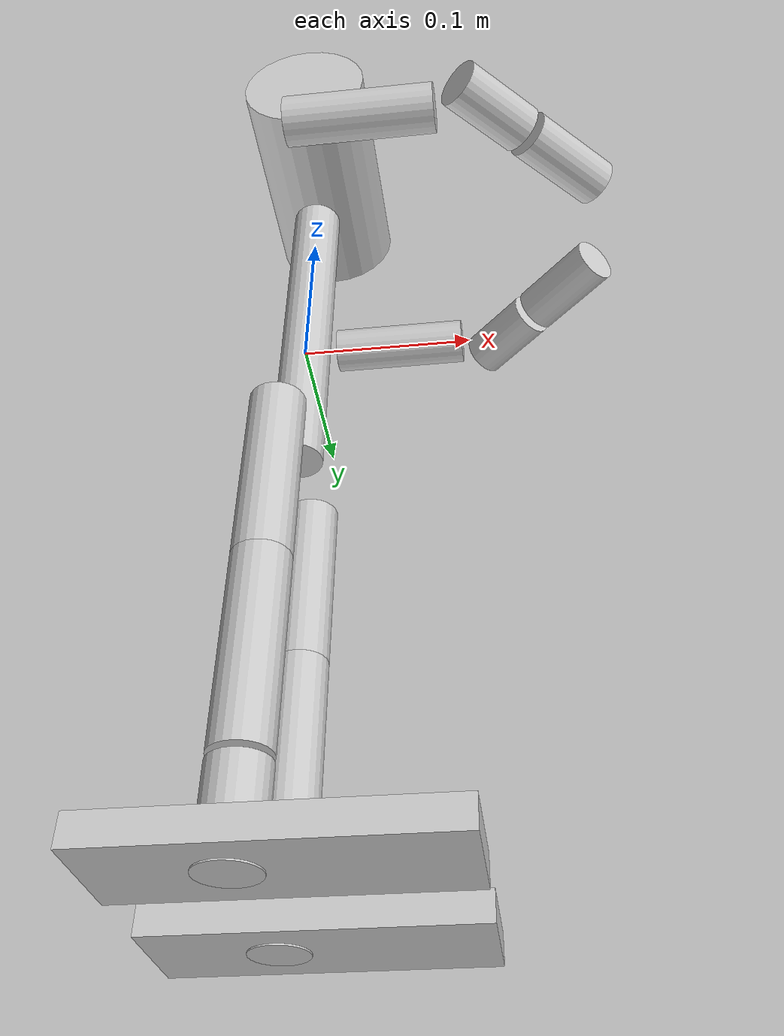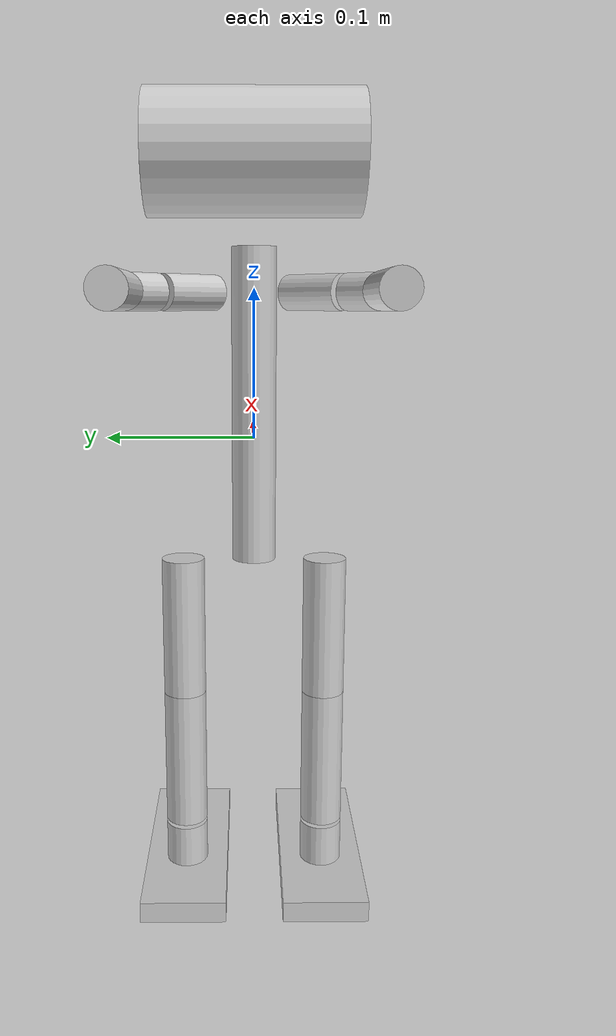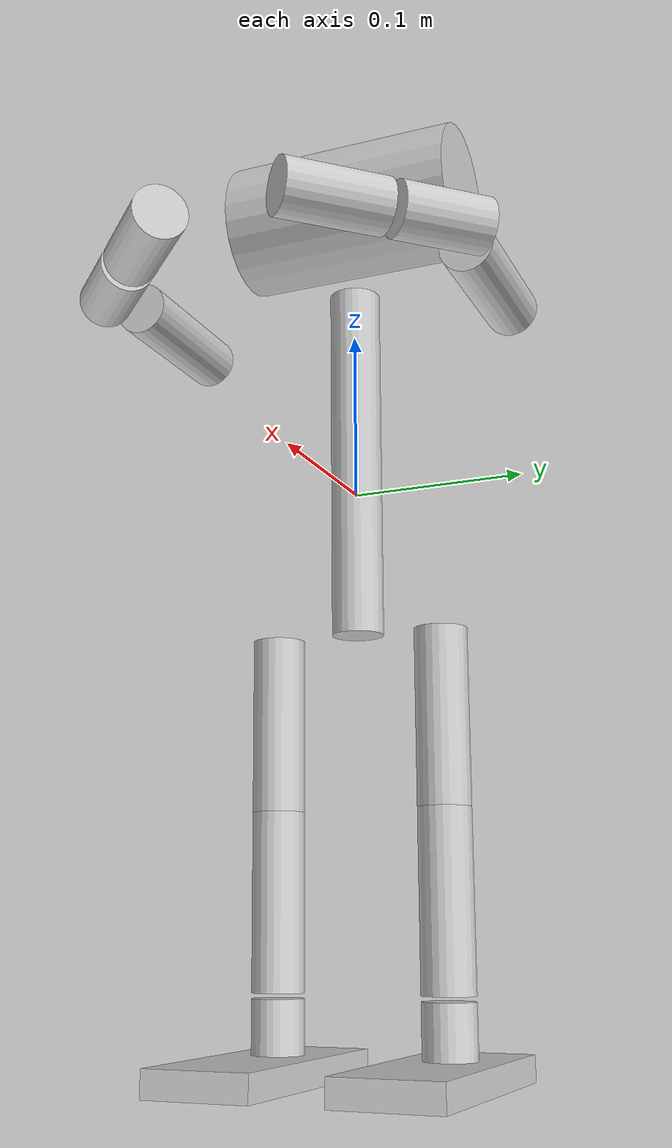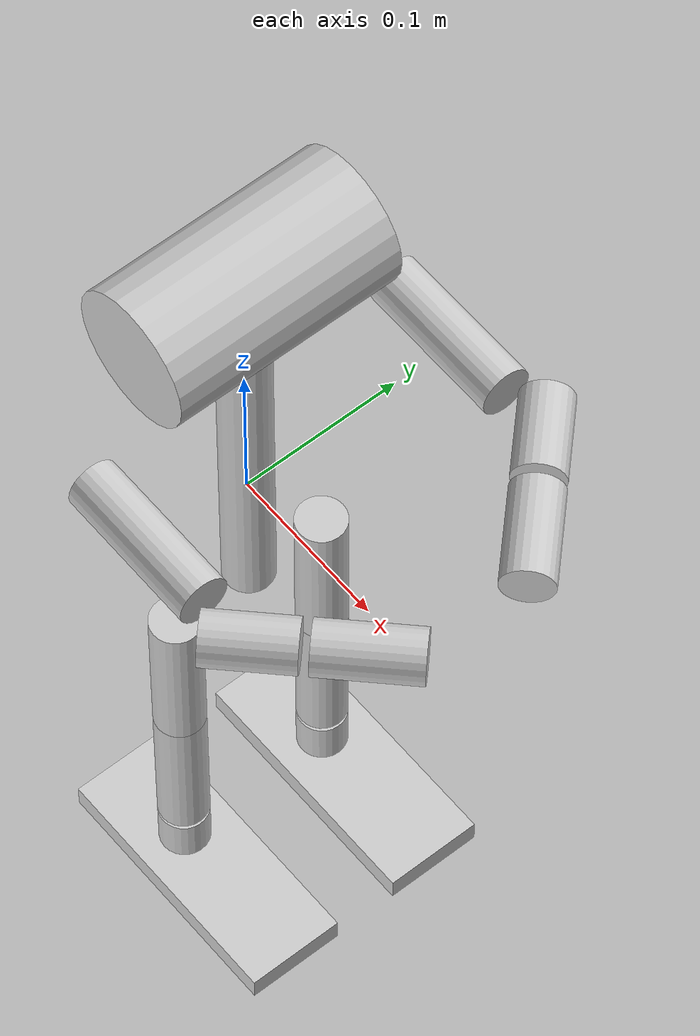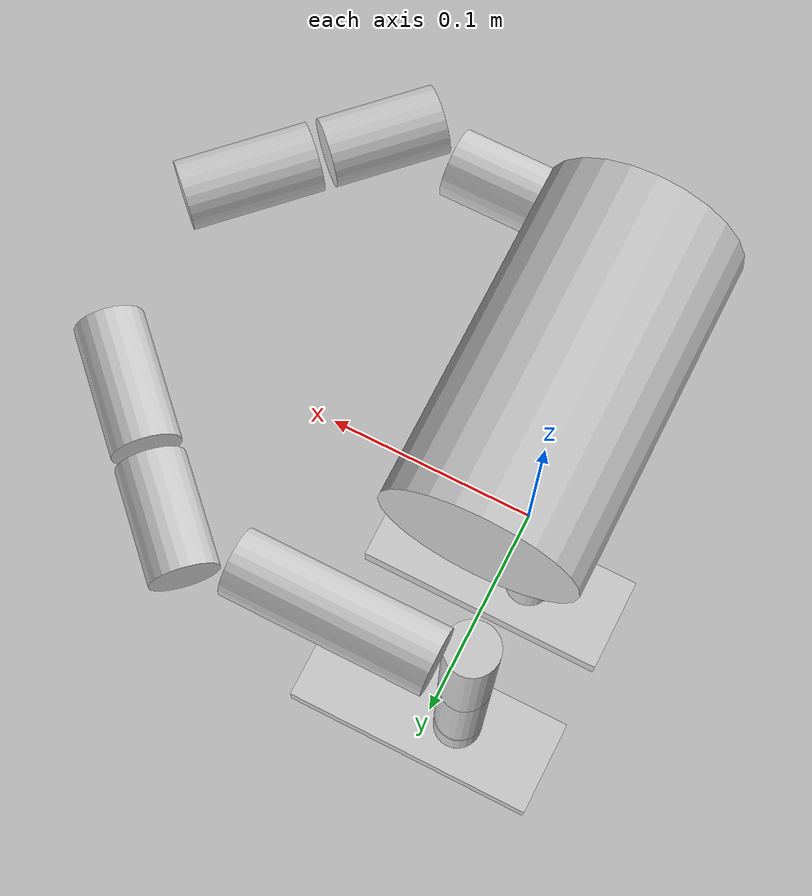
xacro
<?xml version="1.0"?>
<robot xmlns:xacro="http://ros.org/wiki/xacro" name="nao">

  <include filename="$(find nao_description)/urdf/visuals.xacro" />
  <include filename="$(find nao_description)/urdf/nao_robot_v4_structure.urdf.xacro" />
</robot>

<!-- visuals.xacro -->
<!--
    A simple visualization of the Nao's kinematic structure as cylinders
-->
<robot xmlns:xacro="http://ros.org/wiki/xacro">
  <material name="LightGrey">
    <color rgba="0.8 0.8 0.8 1.0"/>
  </material>
  <material name="Grey">
      <color rgba="0.6 0.6 0.6 1.0"/>
  </material>
  <material name="DarkGrey">
      <color rgba="0.3 0.3 0.3 1.0"/>
  </material>
  <material name="Black">
      <color rgba="0.1 0.1 0.1 1.0"/>
  </material>

    <xacro:property name="pi" value="3.1415926535897931"/>
    <xacro:property name="pi_2" value="1.5707963267948966"/>

    <xacro:macro name="insert_visualization_torso" params="">
        <visual>
            <!-- one cylinder spanning over HipOffsetZ and NeckOffsetZ -->
            <origin xyz="0 0 0.02075" rpy="0 0 0"/>
            <geometry>
                <cylinder radius="0.015" length="0.2115"/>
            </geometry>
            <material name="LightGrey"/>
        </visual>
    </xacro:macro>

    <xacro:macro name="insert_visualization_headYaw" params="">
    </xacro:macro>

    <xacro:macro name="insert_visualization_head" params="">
        <visual>
            <origin xyz="0 0 0.058" rpy="1.57 0 0"/>
            <geometry>
                <cylinder radius="0.04" length="0.14"/>
            </geometry>
            <material name="LightGrey"/>
        </visual>
    </xacro:macro>

    <xacro:macro name="insert_visualization_arm" params="side">
        <visual>
            <origin xyz="0.045 0 0" rpy="${pi_2} 0 ${pi_2}"/>
            <geometry>
                <cylinder radius="0.015" length="0.09"/>
            </geometry>
            <material name="LightGrey"/>
        </visual>
    </xacro:macro>

    <xacro:macro name="insert_visualization_elbow" params="side">
        <visual>
            <origin xyz="0.025325 0 0" rpy="${pi_2} 0 ${pi_2}"/>
            <geometry>
                <cylinder radius="0.015" length="0.05065"/>
            </geometry>
            <material name="LightGrey"/>
        </visual>
    </xacro:macro>

    <xacro:macro name="insert_visualization_wrist" params="side">
        <visual>
            <origin xyz="0.029 0 0" rpy="${pi_2} 0 ${pi_2}"/>
            <geometry>
                <cylinder radius="0.015" length="0.058"/>
            </geometry>
            <material name="LightGrey"/>
        </visual>
    </xacro:macro>

    <xacro:macro name="insert_visualization_hip" params="side">
    </xacro:macro>

    <xacro:macro name="insert_visualization_hipRoll" params="side">
    </xacro:macro>

    <xacro:macro name="insert_visualization_thigh" params="side">
        <visual>
            <origin xyz="0 0 -0.05" rpy="0 0 0"/>
            <geometry>
                <cylinder radius="0.015" length="0.1"/>
            </geometry>
            <material name="LightGrey"/>
        </visual>
    </xacro:macro>

    <xacro:macro name="insert_visualization_shine" params="side">
        <visual>
            <origin xyz="0 0 -0.05" rpy="0 0 0"/>
            <geometry>
                <cylinder radius="0.015" length="0.1"/>
            </geometry>
            <material name="LightGrey"/>
        </visual>
    </xacro:macro>

    <xacro:macro name="insert_visualization_ankle" params="side">
    </xacro:macro>

    <xacro:macro name="insert_visualization_ankleRoll" params="side">
        <visual>
            <origin xyz="0 0 -0.023" rpy="0 0 0"/>
            <geometry>
                <cylinder radius="0.015" length="0.046"/>
            </geometry>
            <material name="LightGrey"/>
        </visual>
    </xacro:macro>

    <xacro:macro name="insert_visualization_foot" params="side">
        <visual>
            <origin xyz="0.02 0 0.0075" rpy="0 0 0"/>
            <geometry>
                <box size="0.16 0.06 0.015"/>
            </geometry>
            <material name="LightGrey"/>
        </visual>
    </xacro:macro>

    <xacro:macro name="insert_visualization_cameraTop" params="">
    </xacro:macro>

    <xacro:macro name="insert_visualization_cameraBottom" params="">
    </xacro:macro>

    <xacro:macro name="insert_visualization_fingers" params="side">
    </xacro:macro>

    <xacro:macro name="insert_visualization_elbow_yaw" params="side">
    </xacro:macro>
</robot>

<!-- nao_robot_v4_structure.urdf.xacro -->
<robot xmlns:xacro="http://ros.org/wiki/xacro">

  <!-- dummy first link, directly connects with torso -->
  <link name="base_link" />

  <!-- first real link of the robot, inertial reference frame -->
  <link name="torso" >
    <inertial>
      <origin xyz="-0.00413 0.00009 0.04342" rpy="0 0 0"/>
      <mass value="1.04956"/>
      <inertia ixx="0.00487953284"  ixy="-0.00001428591"  ixz="-0.00019545651" iyy="0.00470360698" iyz="0.00002224589" izz="0.0015671352" />
    </inertial>
    <xacro:insert_visualization_torso/>
  </link>

  <link name="HeadYaw_link">
    <inertial>
      <origin xyz="-0.00001 0.00014 -0.02742" rpy="0 0 0"/>
      <mass value="0.06442"/>
      <inertia ixx="0.00006223368"  ixy="0.00000000042"  ixz="0.00000007448" iyy="0.00006324431" iyz="0.00000010416" izz="0.00000549462" />
    </inertial>
    <xacro:insert_visualization_headYaw/>
  </link>

  <link name="HeadPitch_link">
    <inertial>
      <origin xyz="-0.00112 -0.00003 0.05258" rpy="0 0 0"/>
      <mass value="0.60533"/>
      <inertia ixx="0.00208895741"  ixy="0.00000549094"  ixz="0.0001133995" iyy="1932222.63e-9" iyz="-0.00002803917" izz="0.00082257793" />
    </inertial>
    <xacro:insert_visualization_head/>
  </link>

  <link name="gaze" />

  <link name="CameraTop_frame">
    <xacro:insert_visualization_cameraTop/>
  </link>

  <link name="CameraBottom_frame">
    <xacro:insert_visualization_cameraBottom/>
  </link>

  <!-- Arm -->
  <xacro:macro name="arm_links" params="side reflect">
  <link name = "${side}ShoulderPitch_link">
    <inertial>
      <origin xyz="-0.00165 ${reflect*-0.02663} 0.00014" rpy="0 0 0"/>
      <mass value="0.07504"/>
      <inertia ixx="0"  ixy="0"  ixz="0" iyy="0" iyz="0" izz="0" />
    </inertial>
  </link>

  <link name = "${side}ElbowYaw_link">
    <inertial>
      <origin xyz="-0.02744 0.00000 -0.00014" rpy="0 0 0"/>
      <mass value="0.06483"/>
      <inertia ixx="0"  ixy="0"  ixz="0" iyy="0" iyz="0" izz="0" />
    </inertial>
  </link>

  <link name = "${side}ElbowRoll_link">
    <inertial>
      <origin xyz="0.02552 ${reflect*-0.00281} 0.00090" rpy="0 0 0"/>
      <mass value="0.07778"/>
      <inertia ixx="0"  ixy="0"  ixz="0" iyy="0" iyz="0" izz="0" />
    </inertial>

    <xacro:insert_visualization_elbow side="${side}"/>
  </link>

  <link name = "${side}WristYaw_link">
    <inertial>
      <origin xyz="0.03434 ${reflect*-0.00088} -0.00308" rpy="0 0 0"/>
      <mass value="0.18533"/>
      <inertia ixx="0"  ixy="0"  ixz="0" iyy="0" iyz="0" izz="0" />
    </inertial>
    <xacro:insert_visualization_wrist side="${side}"/>
  </link>
  </xacro:macro>

  <link name="l_wrist"/>
  <link name="r_wrist"/>

  <link name="l_gripper">
    <xacro:insert_visualization_fingers side="L"/>
  </link>
  <link name="r_gripper">
    <xacro:insert_visualization_fingers side="R"/>
  </link>
  <xacro:arm_links side="L" reflect="-1"/>
  <xacro:arm_links side="R" reflect="1"/>

  <link name = "RShoulderRoll_link" >
    <inertial>
      <origin xyz="0.02429 -0.00952 0.00320" rpy="0 0 0"/>
      <mass value="0.15794"/>
      <inertia ixx="0"  ixy="0"  ixz="0" iyy="0" iyz="0" izz="0" />
    </inertial>
    <xacro:insert_visualization_arm side="R"/>
  </link>

  <link name = "LShoulderRoll_link" >
    <inertial>
      <origin xyz="0.02455 0.00563 0.00330" rpy="0 0 0"/>
      <mass value="0.15777"/>
      <inertia ixx="0"  ixy="0"  ixz="0" iyy="0" iyz="0" izz="0" />
    </inertial>
    <xacro:insert_visualization_arm side="L"/>
  </link>

  <!-- Leg links -->
  <xacro:macro name="leg_links" params="side reflect">
  <link name="${side}HipYawPitch_link" >
    <inertial>
      <origin xyz="-0.00773 ${reflect*0.0115} 0.0269" rpy="0 0 0"/>
      <mass value="0.07050"/>
      <inertia ixx="0"  ixy="0"  ixz="0" iyy="0" iyz="0" izz="0" />
    </inertial>
    <xacro:insert_visualization_hip side="${side}"/>
	</link>

  <link name="${side}HipRoll_link">
    <inertial>
      <origin xyz="-0.01549 ${reflect*-0.00029} -0.00516" rpy="0 0 0"/>
      <mass value="0.13053"/>
      <inertia ixx="0"  ixy="0"  ixz="0" iyy="0" iyz="0" izz="0" />
    </inertial>
    <xacro:insert_visualization_hipRoll side="${side}"/>
  </link>

  <link name="${side}HipPitch_link">
    <inertial>
      <origin xyz="0.00139 ${reflect*-0.00223} -0.05373" rpy="0 0 0"/>
      <mass value="0.38972"/>
      <inertia ixx="0"  ixy="0"  ixz="0" iyy="0" iyz="0" izz="0" />
    </inertial>
    <xacro:insert_visualization_thigh side="${side}"/>
  </link>

  <link name="${side}KneePitch_link">
    <inertial>
      <origin xyz="0.00423 ${reflect*-0.00223} -0.04937" rpy="0 0 0"/>
      <mass value="0.29152"/>
      <inertia ixx="0"  ixy="0"  ixz="0" iyy="0" iyz="0" izz="0" />
    </inertial>
    <xacro:insert_visualization_shine side="${side}"/>
  </link>

  <link name="${side}AnklePitch_link">
    <inertial>
      <origin xyz="0.00045 ${reflect*-0.00029} 0.00684" rpy="0 0 0"/>
      <mass value="0.13415"/>
      <inertia ixx="0"  ixy="0"  ixz="0" iyy="0" iyz="0" izz="0" />
    </inertial>
    <xacro:insert_visualization_ankle side="${side}"/>
  </link>

  <link name="${side}AnkleRoll_link">
   <inertial>
      <origin xyz="0.02541 ${reflect*-0.00331} -0.03239" rpy="0 0 0"/>
      <mass value="0.16178"/>
      <inertia ixx="0"  ixy="0"  ixz="0" iyy="0" iyz="0" izz="0" />
    </inertial>
    <xacro:insert_visualization_ankleRoll side="${side}"/>
  </link>
  </xacro:macro>

  <link name="l_ankle" />
  <link name="r_ankle" />

  <link name="l_sole">
    <xacro:insert_visualization_foot side="L"/>
  </link>
  <link name="r_sole">
    <xacro:insert_visualization_foot side="R"/>
  </link>

  <xacro:leg_links side="L" reflect="-1"/>
  <xacro:leg_links side="R" reflect="1"/>

<!--   Joints following below -->

  <joint name="base_joint" type="fixed">
    <child link="torso"/>
    <parent link="base_link"/>
    <origin xyz="0 0 0" rpy="0 0 0" />
  </joint>

  <!-- Head joints -->

  <joint name="HeadYaw" type="revolute">
    <parent link="torso"/>
    <child link="HeadYaw_link"/>
	<!-- NeckOffsetZ -->
    <origin xyz="0 0 0.1265" rpy="0 0 0" />
    <axis xyz="0 0 1" />
    <limit velocity="3.0" effort="30" lower="-2.0857" upper="2.0857" />
  </joint>

  <joint name="HeadPitch" type="revolute">
    <parent link="HeadYaw_link"/>
    <child link="HeadPitch_link"/>
    <origin xyz="0 0 0" rpy="0 0 0" />
    <axis xyz="0 1 0" />
    <limit velocity="3.0" effort="30" lower="-0.6720" upper="0.5149" />
  </joint>

  <joint name="gaze_joint" type="fixed">
    <parent link="HeadPitch_link"/>
    <child link="gaze"/>
    <origin xyz="0.0539 0 0.05" />
  </joint>

  <joint name="CameraTop" type="fixed">
    <parent link="HeadPitch_link"/>
    <child link="CameraTop_frame"/>
    <!-- rotated by 1.2 degress -->
    <origin xyz="0.05871 0 0.06364" rpy="-1.59174 0 -${pi_2}" />
  </joint>

  <joint name="CameraBottom" type="fixed">
    <parent link="HeadPitch_link"/>
    <child link="CameraBottom_frame"/>
    <!-- rotated by 39.7 degrees -->
    <origin xyz="0.05071 0 0.01774" rpy="-2.263692 0 -${pi_2}" />
  </joint>

  <!-- Arm joints -->
  <xacro:macro name="arm_joints" params="side reflect">
  <joint name="${side}ShoulderPitch" type="revolute">
    <parent link="torso"/>
    <child link="${side}ShoulderPitch_link"/>
    <origin xyz="0 ${reflect*-0.098} 0.1" rpy="0 0 0"/>
    <axis xyz="0 1 0"/>
    <limit velocity="3.0" effort="30" lower="-2.0857" upper="2.0857"/>
  </joint>

  <joint name="${side}ElbowYaw" type="revolute">
    <parent link="${side}ShoulderRoll_link"/>
    <child link="${side}ElbowYaw_link"/>
    <origin xyz="0.105 ${reflect*-0.015} 0" rpy="0 0 0"/>
    <axis xyz="1 0 0"/>
    <limit velocity="3.0" effort="30" lower="-2.0857" upper="2.0857"/>
  </joint>

  <joint name="${side}WristYaw" type="revolute">
    <parent link="${side}ElbowRoll_link"/>
    <child link="${side}WristYaw_link"/>
    <origin xyz="0.05595 0 0" rpy="0 0 0"/>
    <axis xyz="1 0 0"/>
    <limit velocity="3.0" effort="30" lower="-1.8238" upper="1.8238"/>
  </joint>
  </xacro:macro>

  <joint name="l_wrist_joint" type="fixed">
    <parent link="LWristYaw_link" />
    <child link="l_wrist" />
    <origin xyz="0 0 0" />
  </joint>
  <joint name="r_wrist_joint" type="fixed">
    <parent link="RWristYaw_link" />
    <child link="r_wrist" />
    <origin xyz="0 0 0" />
  </joint>

  <joint name="l_gripper_joint" type="fixed">
    <parent link="l_wrist" />
    <child link="l_gripper" />
    <origin xyz="0.058 0 -0.0159" />
  </joint>
  <joint name="r_gripper_joint" type="fixed">
    <parent link="r_wrist" />
    <child link="r_gripper" />
    <origin xyz="0.058 0 -0.0159" />
  </joint>

  <joint name="LElbowRoll" type="revolute">
    <parent link="LElbowYaw_link"/>
    <child link="LElbowRoll_link"/>
    <origin xyz="0 0 0" rpy="0 0 0"/>
    <axis xyz="0 0 1"/>
    <limit velocity="3.0" effort="30" lower="-1.5446" upper="-0.0349"/>
  </joint>
  <joint name="RElbowRoll" type="revolute">
    <parent link="RElbowYaw_link"/>
    <child link="RElbowRoll_link"/>
    <origin xyz="0 0 0" rpy="0 0 0"/>
    <axis xyz="0 0 1"/>
    <limit velocity="3.0" effort="30" lower="0.0349" upper="1.5446"/>
  </joint>

  <joint name="LShoulderRoll" type="revolute">
    <parent link="LShoulderPitch_link"/>
    <child link="LShoulderRoll_link"/>
    <origin xyz="0 0 0" rpy="0 0 0"/>
    <axis xyz="0 0 1"/>
    <limit velocity="3.0" effort="30" lower="-0.3142" upper="1.3265"/>
  </joint>
  <joint name="RShoulderRoll" type="revolute">
    <parent link="RShoulderPitch_link"/>
    <child link="RShoulderRoll_link"/>
    <origin xyz="0 0 0" rpy="0 0 0"/>
    <axis xyz="0 0 1"/>
    <limit velocity="3.0" effort="30" lower="-1.3265" upper="0.3142"/>
  </joint>

  <xacro:arm_joints side="L" reflect="-1"/>
  <xacro:arm_joints side="R" reflect="1"/>

  <!-- Leg joints -->
  <joint name="LHipYawPitch" type="revolute">
    <parent link="torso"/>
    <child link="LHipYawPitch_link"/>
    <origin xyz="0 0.05 -0.085" rpy="0 0 0"/>
    <axis xyz="0 0.707106 -0.707106"/>
    <limit velocity="3.0" effort="30" lower="-1.145303" upper="0.740810"/>
  </joint>
  <joint name="RHipYawPitch" type="revolute">
    <parent link="torso"/>
    <child link="RHipYawPitch_link"/>
    <origin xyz="0 -0.05 -0.085" rpy="0 0 0"/>
    <axis xyz="0 0.707106 0.707106"/>
    <limit velocity="3.0" effort="30" lower="-1.145303" upper="0.740810"/>
    <mimic joint="LHipYawPitch" multiplier="1" offset="0"/>
  </joint>

  <xacro:macro name="leg_joints" params="side reflect">
  <joint name="${side}HipPitch" type="revolute">
    <parent link="${side}HipRoll_link"/>
    <child link="${side}HipPitch_link"/>
    <origin xyz="0 0 0" rpy="0 0 0"/>
    <axis xyz="0 1 0"/>
    <!--Nao V3 and V4-->
    <!-- LHipPitch limits: -1.773912 .. 0.484090 -->
    <!-- RHipPitch limits: -1.772308 .. 0.485624 -->
    <limit velocity="3.0" effort="30" lower="-1.772308" upper="0.484090"/>
  </joint>

  <joint name="${side}KneePitch" type="revolute">
    <parent link="${side}HipPitch_link"/>
    <child link="${side}KneePitch_link"/>
    <origin xyz="0 0 -0.1" rpy="0 0 0"/>
    <axis xyz="0 1 0"/>
    <!-- LKneePitch limits: -0.092346 .. 2.112528 -->
    <!-- RKneePitch limits: -0.103083 .. 2.120198 -->
    <limit velocity="3.0" effort="30" lower="-0.092346" upper="2.112528"/>
  </joint>

  <joint name="${side}AnklePitch" type="revolute">
    <parent link="${side}KneePitch_link"/>
    <child link="${side}AnklePitch_link"/>
    <origin xyz="0 0 -0.10290" rpy="0 0 0"/>
    <axis xyz="0 1 0"/>
    <!-- LAnklePitch limits: -1.189516 .. 0.922747 -->
    <!-- RAnklePitch limits: -1.186448 .. 0.932056 -->
    <limit velocity="3.0" effort="30" lower="-1.186448" upper="0.922747"/>
  </joint>
  </xacro:macro>

  <joint name="LHipRoll" type="revolute">
    <parent link="LHipYawPitch_link"/>
    <child link="LHipRoll_link"/>
    <origin xyz="0 0 0" rpy="0 0 0"/>
    <axis xyz="1 0 0"/>
    <limit velocity="3.0" effort="30" lower="-0.379472" upper="0.790477"/>
  </joint>
  <joint name="RHipRoll" type="revolute">
    <parent link="RHipYawPitch_link"/>
    <child link="RHipRoll_link"/>
    <origin xyz="0 0 0" rpy="0 0 0"/>
    <axis xyz="1 0 0"/>
    <limit velocity="3.0" effort="30" lower="-0.738321" upper="0.414754"/>
  </joint>

  <joint name="LAnkleRoll" type="revolute">
    <parent link="LAnklePitch_link"/>
    <child link="LAnkleRoll_link"/>
    <origin xyz="0 0 0" rpy="0 0 0"/>
    <axis xyz="1 0 0"/>
    <limit velocity="3.0" effort="30" lower="-0.769001" upper="0.397880"/>
  </joint>
  <joint name="RAnkleRoll" type="revolute">
    <parent link="RAnklePitch_link"/>
    <child link="RAnkleRoll_link"/>
    <origin xyz="0 0 0" rpy="0 0 0"/>
    <axis xyz="1 0 0"/>
    <limit velocity="3.0" effort="30" lower="-0.388676" upper="0.785875"/>
  </joint>

  <joint name="l_ankle_joint" type="fixed">
    <parent link="LAnkleRoll_link" />
    <child link="l_ankle" />
    <origin xyz="0 0 0" />
  </joint>
  <joint name="r_ankle_joint" type="fixed">
    <parent link="RAnkleRoll_link" />
    <child link="r_ankle" />
    <origin xyz="0 0 0" />
  </joint>
  <joint name="l_sole_joint" type="fixed">
    <parent link="l_ankle" />
    <child link="l_sole" />
    <origin xyz="0 0 -0.04519" />
  </joint>
  <joint name="r_sole_joint" type="fixed">
    <parent link="r_ankle" />
    <child link="r_sole" />
    <origin xyz="0 0 -0.04519" />
  </joint>

  <xacro:leg_joints side="L" reflect="-1"/>
  <xacro:leg_joints side="R" reflect="1"/>

</robot>
